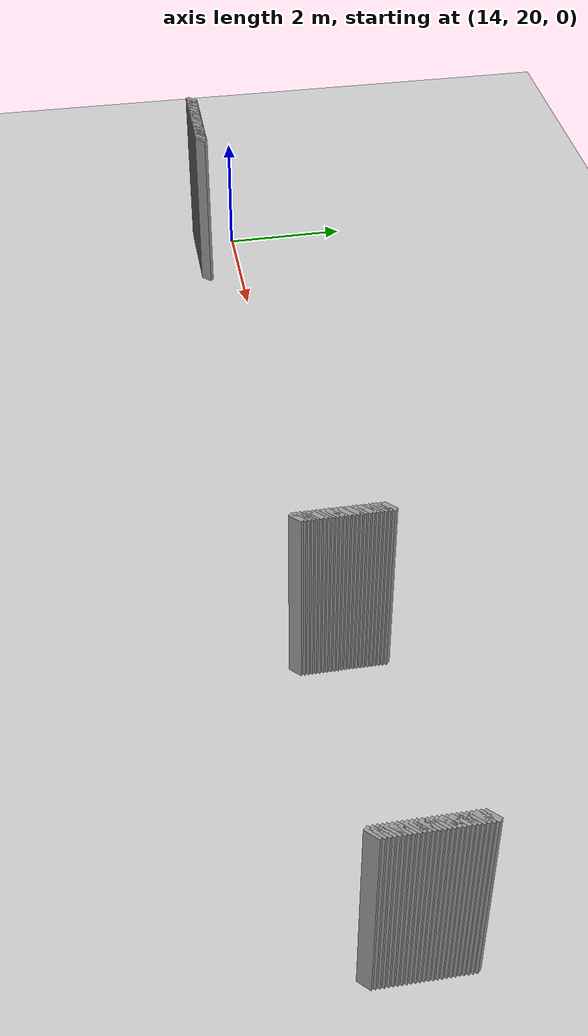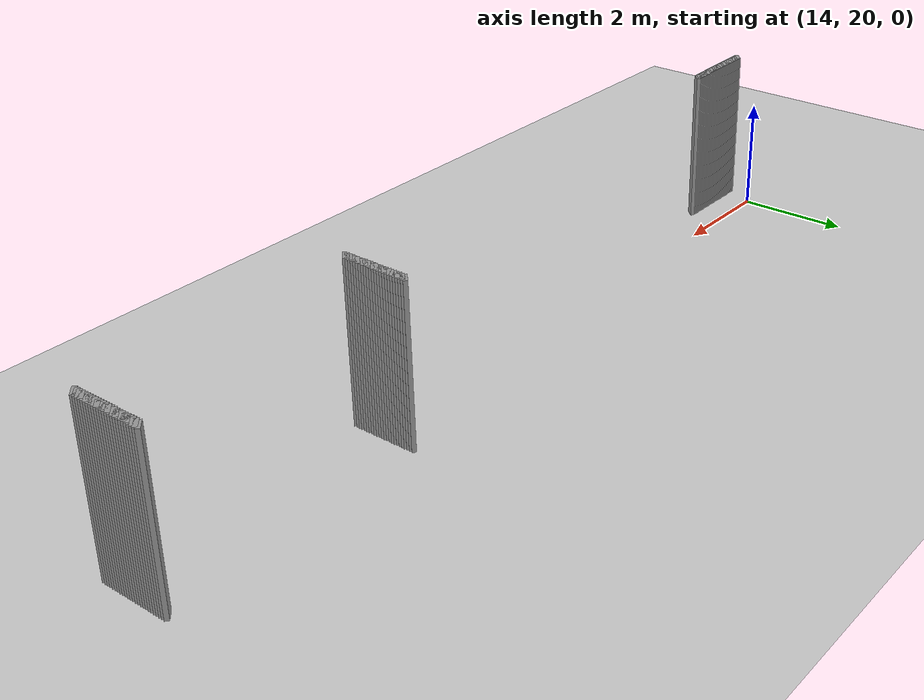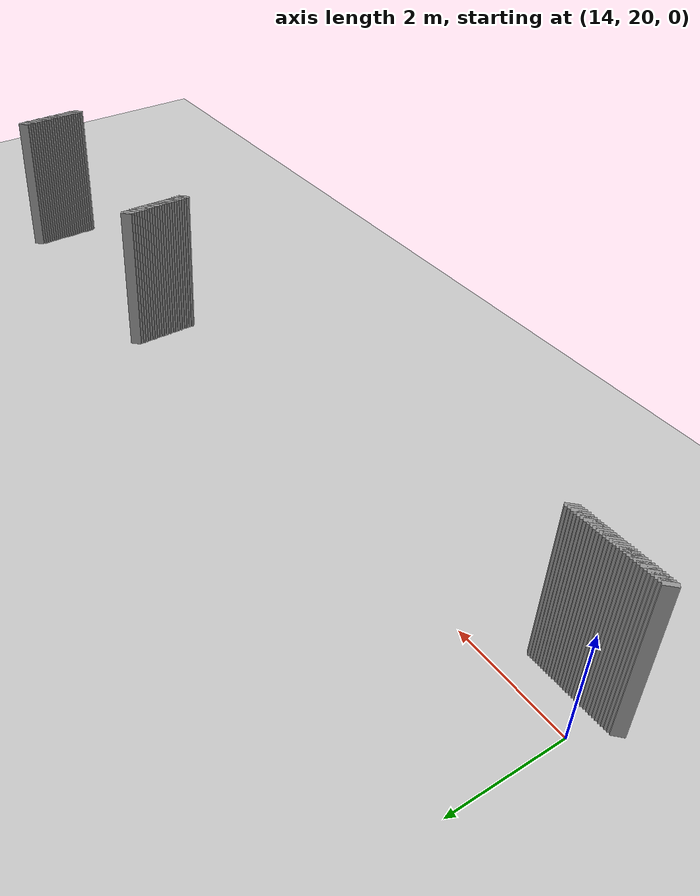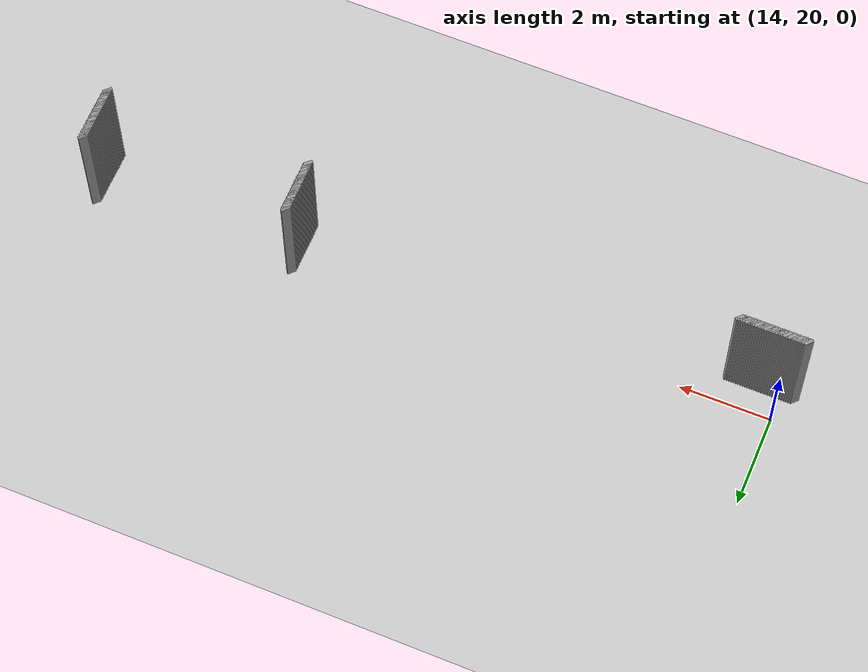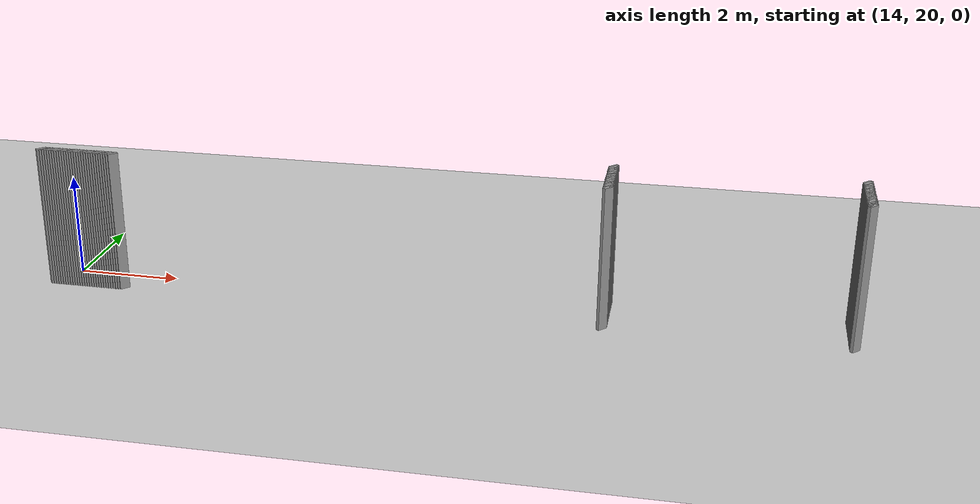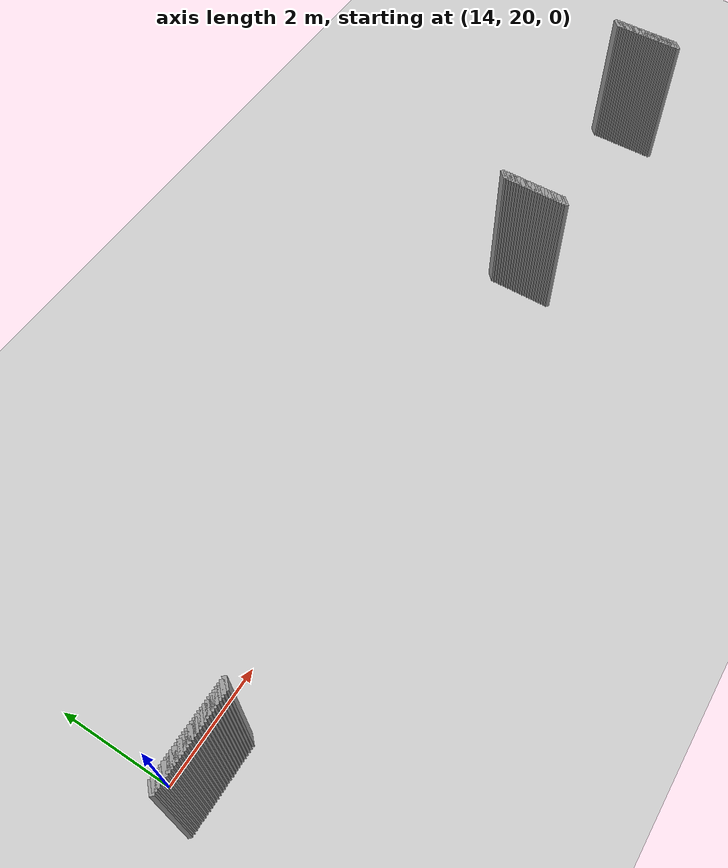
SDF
<sdf version="1.5">
 <world name="default">
  <include><uri>model://ground_plane</uri></include>
  <include><uri>model://sun</uri></include>
  <model name="grey_wall_238">
   <static>1</static>
   <link name="link">
    <pose>29.1 20.65  1.4 0 0 -0.785398163397</pose>
    <collision name="collision"><geometry><box><size>0.0707106781187 .2  2.8</size></box></geometry></collision>
    <visual name="visual">
     <cast_shadows>0</cast_shadows>
     <geometry><box><size>0.0707106781187 .2  2.8</size></box></geometry>
     <material>
      <script>
       <uri>model://grey_wall/materials/scripts</uri>
       <uri>model://grey_wall/materials/textures</uri>
       <name>vrc/grey_wall</name>
      </script>
     </material>
    </visual>
   </link>
  </model>
  <model name="grey_wall_239">
   <static>1</static>
   <link name="link">
    <pose>24.55 20.6  1.4 0 0 -0.785398163397</pose>
    <collision name="collision"><geometry><box><size>0.0707106781187 .2  2.8</size></box></geometry></collision>
    <visual name="visual">
     <cast_shadows>0</cast_shadows>
     <geometry><box><size>0.0707106781187 .2  2.8</size></box></geometry>
     <material>
      <script>
       <uri>model://grey_wall/materials/scripts</uri>
       <uri>model://grey_wall/materials/textures</uri>
       <name>vrc/grey_wall</name>
      </script>
     </material>
    </visual>
   </link>
  </model>
  <model name="grey_wall_240">
   <static>1</static>
   <link name="link">
    <pose>29.1 20.6  1.4 0 0 -0.785398163397</pose>
    <collision name="collision"><geometry><box><size>0.0707106781187 .2  2.8</size></box></geometry></collision>
    <visual name="visual">
     <cast_shadows>0</cast_shadows>
     <geometry><box><size>0.0707106781187 .2  2.8</size></box></geometry>
     <material>
      <script>
       <uri>model://grey_wall/materials/scripts</uri>
       <uri>model://grey_wall/materials/textures</uri>
       <name>vrc/grey_wall</name>
      </script>
     </material>
    </visual>
   </link>
  </model>
  <model name="grey_wall_241">
   <static>1</static>
   <link name="link">
    <pose>24.55 20.55  1.4 0 0 -0.785398163397</pose>
    <collision name="collision"><geometry><box><size>0.0707106781187 .2  2.8</size></box></geometry></collision>
    <visual name="visual">
     <cast_shadows>0</cast_shadows>
     <geometry><box><size>0.0707106781187 .2  2.8</size></box></geometry>
     <material>
      <script>
       <uri>model://grey_wall/materials/scripts</uri>
       <uri>model://grey_wall/materials/textures</uri>
       <name>vrc/grey_wall</name>
      </script>
     </material>
    </visual>
   </link>
  </model>
  <model name="grey_wall_242">
   <static>1</static>
   <link name="link">
    <pose>29.1 20.55  1.4 0 0 -0.785398163397</pose>
    <collision name="collision"><geometry><box><size>0.0707106781187 .2  2.8</size></box></geometry></collision>
    <visual name="visual">
     <cast_shadows>0</cast_shadows>
     <geometry><box><size>0.0707106781187 .2  2.8</size></box></geometry>
     <material>
      <script>
       <uri>model://grey_wall/materials/scripts</uri>
       <uri>model://grey_wall/materials/textures</uri>
       <name>vrc/grey_wall</name>
      </script>
     </material>
    </visual>
   </link>
  </model>
  <model name="grey_wall_243">
   <static>1</static>
   <link name="link">
    <pose>24.55 20.5  1.4 0 0 -0.785398163397</pose>
    <collision name="collision"><geometry><box><size>0.0707106781187 .2  2.8</size></box></geometry></collision>
    <visual name="visual">
     <cast_shadows>0</cast_shadows>
     <geometry><box><size>0.0707106781187 .2  2.8</size></box></geometry>
     <material>
      <script>
       <uri>model://grey_wall/materials/scripts</uri>
       <uri>model://grey_wall/materials/textures</uri>
       <name>vrc/grey_wall</name>
      </script>
     </material>
    </visual>
   </link>
  </model>
  <model name="grey_wall_244">
   <static>1</static>
   <link name="link">
    <pose>29.1 20.5  1.4 0 0 -0.785398163397</pose>
    <collision name="collision"><geometry><box><size>0.0707106781187 .2  2.8</size></box></geometry></collision>
    <visual name="visual">
     <cast_shadows>0</cast_shadows>
     <geometry><box><size>0.0707106781187 .2  2.8</size></box></geometry>
     <material>
      <script>
       <uri>model://grey_wall/materials/scripts</uri>
       <uri>model://grey_wall/materials/textures</uri>
       <name>vrc/grey_wall</name>
      </script>
     </material>
    </visual>
   </link>
  </model>
  <model name="grey_wall_245">
   <static>1</static>
   <link name="link">
    <pose>24.55 20.45  1.4 0 0 -0.785398163397</pose>
    <collision name="collision"><geometry><box><size>0.0707106781187 .2  2.8</size></box></geometry></collision>
    <visual name="visual">
     <cast_shadows>0</cast_shadows>
     <geometry><box><size>0.0707106781187 .2  2.8</size></box></geometry>
     <material>
      <script>
       <uri>model://grey_wall/materials/scripts</uri>
       <uri>model://grey_wall/materials/textures</uri>
       <name>vrc/grey_wall</name>
      </script>
     </material>
    </visual>
   </link>
  </model>
  <model name="grey_wall_246">
   <static>1</static>
   <link name="link">
    <pose>29.1 20.45  1.4 0 0 -0.785398163397</pose>
    <collision name="collision"><geometry><box><size>0.0707106781187 .2  2.8</size></box></geometry></collision>
    <visual name="visual">
     <cast_shadows>0</cast_shadows>
     <geometry><box><size>0.0707106781187 .2  2.8</size></box></geometry>
     <material>
      <script>
       <uri>model://grey_wall/materials/scripts</uri>
       <uri>model://grey_wall/materials/textures</uri>
       <name>vrc/grey_wall</name>
      </script>
     </material>
    </visual>
   </link>
  </model>
  <model name="grey_wall_247">
   <static>1</static>
   <link name="link">
    <pose>24.55 20.4  1.4 0 0 -0.785398163397</pose>
    <collision name="collision"><geometry><box><size>0.0707106781187 .2  2.8</size></box></geometry></collision>
    <visual name="visual">
     <cast_shadows>0</cast_shadows>
     <geometry><box><size>0.0707106781187 .2  2.8</size></box></geometry>
     <material>
      <script>
       <uri>model://grey_wall/materials/scripts</uri>
       <uri>model://grey_wall/materials/textures</uri>
       <name>vrc/grey_wall</name>
      </script>
     </material>
    </visual>
   </link>
  </model>
  <model name="grey_wall_248">
   <static>1</static>
   <link name="link">
    <pose>29.1 20.4  1.4 0 0 -0.785398163397</pose>
    <collision name="collision"><geometry><box><size>0.0707106781187 .2  2.8</size></box></geometry></collision>
    <visual name="visual">
     <cast_shadows>0</cast_shadows>
     <geometry><box><size>0.0707106781187 .2  2.8</size></box></geometry>
     <material>
      <script>
       <uri>model://grey_wall/materials/scripts</uri>
       <uri>model://grey_wall/materials/textures</uri>
       <name>vrc/grey_wall</name>
      </script>
     </material>
    </visual>
   </link>
  </model>
  <model name="grey_wall_249">
   <static>1</static>
   <link name="link">
    <pose>24.55 20.35  1.4 0 0 -0.785398163397</pose>
    <collision name="collision"><geometry><box><size>0.0707106781187 .2  2.8</size></box></geometry></collision>
    <visual name="visual">
     <cast_shadows>0</cast_shadows>
     <geometry><box><size>0.0707106781187 .2  2.8</size></box></geometry>
     <material>
      <script>
       <uri>model://grey_wall/materials/scripts</uri>
       <uri>model://grey_wall/materials/textures</uri>
       <name>vrc/grey_wall</name>
      </script>
     </material>
    </visual>
   </link>
  </model>
  <model name="grey_wall_250">
   <static>1</static>
   <link name="link">
    <pose>29.1 20.35  1.4 0 0 -0.785398163397</pose>
    <collision name="collision"><geometry><box><size>0.0707106781187 .2  2.8</size></box></geometry></collision>
    <visual name="visual">
     <cast_shadows>0</cast_shadows>
     <geometry><box><size>0.0707106781187 .2  2.8</size></box></geometry>
     <material>
      <script>
       <uri>model://grey_wall/materials/scripts</uri>
       <uri>model://grey_wall/materials/textures</uri>
       <name>vrc/grey_wall</name>
      </script>
     </material>
    </visual>
   </link>
  </model>
  <model name="grey_wall_251">
   <static>1</static>
   <link name="link">
    <pose>24.55 20.3  1.4 0 0 -0.785398163397</pose>
    <collision name="collision"><geometry><box><size>0.0707106781187 .2  2.8</size></box></geometry></collision>
    <visual name="visual">
     <cast_shadows>0</cast_shadows>
     <geometry><box><size>0.0707106781187 .2  2.8</size></box></geometry>
     <material>
      <script>
       <uri>model://grey_wall/materials/scripts</uri>
       <uri>model://grey_wall/materials/textures</uri>
       <name>vrc/grey_wall</name>
      </script>
     </material>
    </visual>
   </link>
  </model>
  <model name="grey_wall_252">
   <static>1</static>
   <link name="link">
    <pose>29.1 20.3  1.4 0 0 -0.785398163397</pose>
    <collision name="collision"><geometry><box><size>0.0707106781187 .2  2.8</size></box></geometry></collision>
    <visual name="visual">
     <cast_shadows>0</cast_shadows>
     <geometry><box><size>0.0707106781187 .2  2.8</size></box></geometry>
     <material>
      <script>
       <uri>model://grey_wall/materials/scripts</uri>
       <uri>model://grey_wall/materials/textures</uri>
       <name>vrc/grey_wall</name>
      </script>
     </material>
    </visual>
   </link>
  </model>
  <model name="grey_wall_253">
   <static>1</static>
   <link name="link">
    <pose>24.55 20.25  1.4 0 0 -0.785398163397</pose>
    <collision name="collision"><geometry><box><size>0.0707106781187 .2  2.8</size></box></geometry></collision>
    <visual name="visual">
     <cast_shadows>0</cast_shadows>
     <geometry><box><size>0.0707106781187 .2  2.8</size></box></geometry>
     <material>
      <script>
       <uri>model://grey_wall/materials/scripts</uri>
       <uri>model://grey_wall/materials/textures</uri>
       <name>vrc/grey_wall</name>
      </script>
     </material>
    </visual>
   </link>
  </model>
  <model name="grey_wall_254">
   <static>1</static>
   <link name="link">
    <pose>29.1 20.25  1.4 0 0 -0.785398163397</pose>
    <collision name="collision"><geometry><box><size>0.0707106781187 .2  2.8</size></box></geometry></collision>
    <visual name="visual">
     <cast_shadows>0</cast_shadows>
     <geometry><box><size>0.0707106781187 .2  2.8</size></box></geometry>
     <material>
      <script>
       <uri>model://grey_wall/materials/scripts</uri>
       <uri>model://grey_wall/materials/textures</uri>
       <name>vrc/grey_wall</name>
      </script>
     </material>
    </visual>
   </link>
  </model>
  <model name="grey_wall_255">
   <static>1</static>
   <link name="link">
    <pose>24.55 20.2  1.4 0 0 -0.785398163397</pose>
    <collision name="collision"><geometry><box><size>0.0707106781187 .2  2.8</size></box></geometry></collision>
    <visual name="visual">
     <cast_shadows>0</cast_shadows>
     <geometry><box><size>0.0707106781187 .2  2.8</size></box></geometry>
     <material>
      <script>
       <uri>model://grey_wall/materials/scripts</uri>
       <uri>model://grey_wall/materials/textures</uri>
       <name>vrc/grey_wall</name>
      </script>
     </material>
    </visual>
   </link>
  </model>
  <model name="grey_wall_256">
   <static>1</static>
   <link name="link">
    <pose>29.1 20.2  1.4 0 0 -0.785398163397</pose>
    <collision name="collision"><geometry><box><size>0.0707106781187 .2  2.8</size></box></geometry></collision>
    <visual name="visual">
     <cast_shadows>0</cast_shadows>
     <geometry><box><size>0.0707106781187 .2  2.8</size></box></geometry>
     <material>
      <script>
       <uri>model://grey_wall/materials/scripts</uri>
       <uri>model://grey_wall/materials/textures</uri>
       <name>vrc/grey_wall</name>
      </script>
     </material>
    </visual>
   </link>
  </model>
  <model name="grey_wall_257">
   <static>1</static>
   <link name="link">
    <pose>24.55 20.15  1.4 0 0 -0.785398163397</pose>
    <collision name="collision"><geometry><box><size>0.0707106781187 .2  2.8</size></box></geometry></collision>
    <visual name="visual">
     <cast_shadows>0</cast_shadows>
     <geometry><box><size>0.0707106781187 .2  2.8</size></box></geometry>
     <material>
      <script>
       <uri>model://grey_wall/materials/scripts</uri>
       <uri>model://grey_wall/materials/textures</uri>
       <name>vrc/grey_wall</name>
      </script>
     </material>
    </visual>
   </link>
  </model>
  <model name="grey_wall_258">
   <static>1</static>
   <link name="link">
    <pose>29.1 20.15  1.4 0 0 -0.785398163397</pose>
    <collision name="collision"><geometry><box><size>0.0707106781187 .2  2.8</size></box></geometry></collision>
    <visual name="visual">
     <cast_shadows>0</cast_shadows>
     <geometry><box><size>0.0707106781187 .2  2.8</size></box></geometry>
     <material>
      <script>
       <uri>model://grey_wall/materials/scripts</uri>
       <uri>model://grey_wall/materials/textures</uri>
       <name>vrc/grey_wall</name>
      </script>
     </material>
    </visual>
   </link>
  </model>
  <model name="grey_wall_259">
   <static>1</static>
   <link name="link">
    <pose>24.55 20.1  1.4 0 0 -0.785398163397</pose>
    <collision name="collision"><geometry><box><size>0.0707106781187 .2  2.8</size></box></geometry></collision>
    <visual name="visual">
     <cast_shadows>0</cast_shadows>
     <geometry><box><size>0.0707106781187 .2  2.8</size></box></geometry>
     <material>
      <script>
       <uri>model://grey_wall/materials/scripts</uri>
       <uri>model://grey_wall/materials/textures</uri>
       <name>vrc/grey_wall</name>
      </script>
     </material>
    </visual>
   </link>
  </model>
  <model name="grey_wall_260">
   <static>1</static>
   <link name="link">
    <pose>29.1 20.1  1.4 0 0 -0.785398163397</pose>
    <collision name="collision"><geometry><box><size>0.0707106781187 .2  2.8</size></box></geometry></collision>
    <visual name="visual">
     <cast_shadows>0</cast_shadows>
     <geometry><box><size>0.0707106781187 .2  2.8</size></box></geometry>
     <material>
      <script>
       <uri>model://grey_wall/materials/scripts</uri>
       <uri>model://grey_wall/materials/textures</uri>
       <name>vrc/grey_wall</name>
      </script>
     </material>
    </visual>
   </link>
  </model>
  <model name="grey_wall_261">
   <static>1</static>
   <link name="link">
    <pose>24.55 20.05  1.4 0 0 -0.785398163397</pose>
    <collision name="collision"><geometry><box><size>0.0707106781187 .2  2.8</size></box></geometry></collision>
    <visual name="visual">
     <cast_shadows>0</cast_shadows>
     <geometry><box><size>0.0707106781187 .2  2.8</size></box></geometry>
     <material>
      <script>
       <uri>model://grey_wall/materials/scripts</uri>
       <uri>model://grey_wall/materials/textures</uri>
       <name>vrc/grey_wall</name>
      </script>
     </material>
    </visual>
   </link>
  </model>
  <model name="grey_wall_262">
   <static>1</static>
   <link name="link">
    <pose>29.1 20.05  1.4 0 0 -0.785398163397</pose>
    <collision name="collision"><geometry><box><size>0.0707106781187 .2  2.8</size></box></geometry></collision>
    <visual name="visual">
     <cast_shadows>0</cast_shadows>
     <geometry><box><size>0.0707106781187 .2  2.8</size></box></geometry>
     <material>
      <script>
       <uri>model://grey_wall/materials/scripts</uri>
       <uri>model://grey_wall/materials/textures</uri>
       <name>vrc/grey_wall</name>
      </script>
     </material>
    </visual>
   </link>
  </model>
  <model name="grey_wall_263">
   <static>1</static>
   <link name="link">
    <pose>24.55 20.0  1.4 0 0 -0.785398163397</pose>
    <collision name="collision"><geometry><box><size>0.0707106781187 .2  2.8</size></box></geometry></collision>
    <visual name="visual">
     <cast_shadows>0</cast_shadows>
     <geometry><box><size>0.0707106781187 .2  2.8</size></box></geometry>
     <material>
      <script>
       <uri>model://grey_wall/materials/scripts</uri>
       <uri>model://grey_wall/materials/textures</uri>
       <name>vrc/grey_wall</name>
      </script>
     </material>
    </visual>
   </link>
  </model>
  <model name="grey_wall_264">
   <static>1</static>
   <link name="link">
    <pose>29.1 20.0  1.4 0 0 -0.785398163397</pose>
    <collision name="collision"><geometry><box><size>0.0707106781187 .2  2.8</size></box></geometry></collision>
    <visual name="visual">
     <cast_shadows>0</cast_shadows>
     <geometry><box><size>0.0707106781187 .2  2.8</size></box></geometry>
     <material>
      <script>
       <uri>model://grey_wall/materials/scripts</uri>
       <uri>model://grey_wall/materials/textures</uri>
       <name>vrc/grey_wall</name>
      </script>
     </material>
    </visual>
   </link>
  </model>
  <model name="grey_wall_265">
   <static>1</static>
   <link name="link">
    <pose>24.55 19.95  1.4 0 0 -0.785398163397</pose>
    <collision name="collision"><geometry><box><size>0.0707106781187 .2  2.8</size></box></geometry></collision>
    <visual name="visual">
     <cast_shadows>0</cast_shadows>
     <geometry><box><size>0.0707106781187 .2  2.8</size></box></geometry>
     <material>
      <script>
       <uri>model://grey_wall/materials/scripts</uri>
       <uri>model://grey_wall/materials/textures</uri>
       <name>vrc/grey_wall</name>
      </script>
     </material>
    </visual>
   </link>
  </model>
  <model name="grey_wall_266">
   <static>1</static>
   <link name="link">
    <pose>29.1 19.95  1.4 0 0 -0.785398163397</pose>
    <collision name="collision"><geometry><box><size>0.0707106781187 .2  2.8</size></box></geometry></collision>
    <visual name="visual">
     <cast_shadows>0</cast_shadows>
     <geometry><box><size>0.0707106781187 .2  2.8</size></box></geometry>
     <material>
      <script>
       <uri>model://grey_wall/materials/scripts</uri>
       <uri>model://grey_wall/materials/textures</uri>
       <name>vrc/grey_wall</name>
      </script>
     </material>
    </visual>
   </link>
  </model>
  <model name="grey_wall_267">
   <static>1</static>
   <link name="link">
    <pose>24.55 19.9  1.4 0 0 -0.785398163397</pose>
    <collision name="collision"><geometry><box><size>0.0707106781187 .2  2.8</size></box></geometry></collision>
    <visual name="visual">
     <cast_shadows>0</cast_shadows>
     <geometry><box><size>0.0707106781187 .2  2.8</size></box></geometry>
     <material>
      <script>
       <uri>model://grey_wall/materials/scripts</uri>
       <uri>model://grey_wall/materials/textures</uri>
       <name>vrc/grey_wall</name>
      </script>
     </material>
    </visual>
   </link>
  </model>
  <model name="grey_wall_268">
   <static>1</static>
   <link name="link">
    <pose>29.1 19.9  1.4 0 0 -0.785398163397</pose>
    <collision name="collision"><geometry><box><size>0.0707106781187 .2  2.8</size></box></geometry></collision>
    <visual name="visual">
     <cast_shadows>0</cast_shadows>
     <geometry><box><size>0.0707106781187 .2  2.8</size></box></geometry>
     <material>
      <script>
       <uri>model://grey_wall/materials/scripts</uri>
       <uri>model://grey_wall/materials/textures</uri>
       <name>vrc/grey_wall</name>
      </script>
     </material>
    </visual>
   </link>
  </model>
  <model name="grey_wall_269">
   <static>1</static>
   <link name="link">
    <pose>24.55 19.85  1.4 0 0 -0.785398163397</pose>
    <collision name="collision"><geometry><box><size>0.0707106781187 .2  2.8</size></box></geometry></collision>
    <visual name="visual">
     <cast_shadows>0</cast_shadows>
     <geometry><box><size>0.0707106781187 .2  2.8</size></box></geometry>
     <material>
      <script>
       <uri>model://grey_wall/materials/scripts</uri>
       <uri>model://grey_wall/materials/textures</uri>
       <name>vrc/grey_wall</name>
      </script>
     </material>
    </visual>
   </link>
  </model>
  <model name="grey_wall_270">
   <static>1</static>
   <link name="link">
    <pose>29.1 19.85  1.4 0 0 -0.785398163397</pose>
    <collision name="collision"><geometry><box><size>0.0707106781187 .2  2.8</size></box></geometry></collision>
    <visual name="visual">
     <cast_shadows>0</cast_shadows>
     <geometry><box><size>0.0707106781187 .2  2.8</size></box></geometry>
     <material>
      <script>
       <uri>model://grey_wall/materials/scripts</uri>
       <uri>model://grey_wall/materials/textures</uri>
       <name>vrc/grey_wall</name>
      </script>
     </material>
    </visual>
   </link>
  </model>
  <model name="grey_wall_271">
   <static>1</static>
   <link name="link">
    <pose>24.55 19.8  1.4 0 0 -0.785398163397</pose>
    <collision name="collision"><geometry><box><size>0.0707106781187 .2  2.8</size></box></geometry></collision>
    <visual name="visual">
     <cast_shadows>0</cast_shadows>
     <geometry><box><size>0.0707106781187 .2  2.8</size></box></geometry>
     <material>
      <script>
       <uri>model://grey_wall/materials/scripts</uri>
       <uri>model://grey_wall/materials/textures</uri>
       <name>vrc/grey_wall</name>
      </script>
     </material>
    </visual>
   </link>
  </model>
  <model name="grey_wall_272">
   <static>1</static>
   <link name="link">
    <pose>29.1 19.8  1.4 0 0 -0.785398163397</pose>
    <collision name="collision"><geometry><box><size>0.0707106781187 .2  2.8</size></box></geometry></collision>
    <visual name="visual">
     <cast_shadows>0</cast_shadows>
     <geometry><box><size>0.0707106781187 .2  2.8</size></box></geometry>
     <material>
      <script>
       <uri>model://grey_wall/materials/scripts</uri>
       <uri>model://grey_wall/materials/textures</uri>
       <name>vrc/grey_wall</name>
      </script>
     </material>
    </visual>
   </link>
  </model>
  <model name="grey_wall_273">
   <static>1</static>
   <link name="link">
    <pose>24.55 19.75  1.4 0 0 -0.785398163397</pose>
    <collision name="collision"><geometry><box><size>0.0707106781187 .2  2.8</size></box></geometry></collision>
    <visual name="visual">
     <cast_shadows>0</cast_shadows>
     <geometry><box><size>0.0707106781187 .2  2.8</size></box></geometry>
     <material>
      <script>
       <uri>model://grey_wall/materials/scripts</uri>
       <uri>model://grey_wall/materials/textures</uri>
       <name>vrc/grey_wall</name>
      </script>
     </material>
    </visual>
   </link>
  </model>
  <model name="grey_wall_274">
   <static>1</static>
   <link name="link">
    <pose>29.1 19.75  1.4 0 0 -0.785398163397</pose>
    <collision name="collision"><geometry><box><size>0.0707106781187 .2  2.8</size></box></geometry></collision>
    <visual name="visual">
     <cast_shadows>0</cast_shadows>
     <geometry><box><size>0.0707106781187 .2  2.8</size></box></geometry>
     <material>
      <script>
       <uri>model://grey_wall/materials/scripts</uri>
       <uri>model://grey_wall/materials/textures</uri>
       <name>vrc/grey_wall</name>
      </script>
     </material>
    </visual>
   </link>
  </model>
  <model name="grey_wall_275">
   <static>1</static>
   <link name="link">
    <pose>24.55 19.7  1.4 0 0 -0.785398163397</pose>
    <collision name="collision"><geometry><box><size>0.0707106781187 .2  2.8</size></box></geometry></collision>
    <visual name="visual">
     <cast_shadows>0</cast_shadows>
     <geometry><box><size>0.0707106781187 .2  2.8</size></box></geometry>
     <material>
      <script>
       <uri>model://grey_wall/materials/scripts</uri>
       <uri>model://grey_wall/materials/textures</uri>
       <name>vrc/grey_wall</name>
      </script>
     </material>
    </visual>
   </link>
  </model>
  <model name="grey_wall_276">
   <static>1</static>
   <link name="link">
    <pose>29.1 19.7  1.4 0 0 -0.785398163397</pose>
    <collision name="collision"><geometry><box><size>0.0707106781187 .2  2.8</size></box></geometry></collision>
    <visual name="visual">
     <cast_shadows>0</cast_shadows>
     <geometry><box><size>0.0707106781187 .2  2.8</size></box></geometry>
     <material>
      <script>
       <uri>model://grey_wall/materials/scripts</uri>
       <uri>model://grey_wall/materials/textures</uri>
       <name>vrc/grey_wall</name>
      </script>
     </material>
    </visual>
   </link>
  </model>
  <model name="grey_wall_277">
   <static>1</static>
   <link name="link">
    <pose>24.55 19.65  1.4 0 0 -0.785398163397</pose>
    <collision name="collision"><geometry><box><size>0.0707106781187 .2  2.8</size></box></geometry></collision>
    <visual name="visual">
     <cast_shadows>0</cast_shadows>
     <geometry><box><size>0.0707106781187 .2  2.8</size></box></geometry>
     <material>
      <script>
       <uri>model://grey_wall/materials/scripts</uri>
       <uri>model://grey_wall/materials/textures</uri>
       <name>vrc/grey_wall</name>
      </script>
     </material>
    </visual>
   </link>
  </model>
  <model name="grey_wall_278">
   <static>1</static>
   <link name="link">
    <pose>29.1 19.65  1.4 0 0 -0.785398163397</pose>
    <collision name="collision"><geometry><box><size>0.0707106781187 .2  2.8</size></box></geometry></collision>
    <visual name="visual">
     <cast_shadows>0</cast_shadows>
     <geometry><box><size>0.0707106781187 .2  2.8</size></box></geometry>
     <material>
      <script>
       <uri>model://grey_wall/materials/scripts</uri>
       <uri>model://grey_wall/materials/textures</uri>
       <name>vrc/grey_wall</name>
      </script>
     </material>
    </visual>
   </link>
  </model>
  <model name="grey_wall_279">
   <static>1</static>
   <link name="link">
    <pose>24.55 19.6  1.4 0 0 -0.785398163397</pose>
    <collision name="collision"><geometry><box><size>0.0707106781187 .2  2.8</size></box></geometry></collision>
    <visual name="visual">
     <cast_shadows>0</cast_shadows>
     <geometry><box><size>0.0707106781187 .2  2.8</size></box></geometry>
     <material>
      <script>
       <uri>model://grey_wall/materials/scripts</uri>
       <uri>model://grey_wall/materials/textures</uri>
       <name>vrc/grey_wall</name>
      </script>
     </material>
    </visual>
   </link>
  </model>
  <model name="grey_wall_280">
   <static>1</static>
   <link name="link">
    <pose>29.1 19.6  1.4 0 0 -0.785398163397</pose>
    <collision name="collision"><geometry><box><size>0.0707106781187 .2  2.8</size></box></geometry></collision>
    <visual name="visual">
     <cast_shadows>0</cast_shadows>
     <geometry><box><size>0.0707106781187 .2  2.8</size></box></geometry>
     <material>
      <script>
       <uri>model://grey_wall/materials/scripts</uri>
       <uri>model://grey_wall/materials/textures</uri>
       <name>vrc/grey_wall</name>
      </script>
     </material>
    </visual>
   </link>
  </model>
  <model name="grey_wall_281">
   <static>1</static>
   <link name="link">
    <pose>24.55 19.55  1.4 0 0 -0.785398163397</pose>
    <collision name="collision"><geometry><box><size>0.0707106781187 .2  2.8</size></box></geometry></collision>
    <visual name="visual">
     <cast_shadows>0</cast_shadows>
     <geometry><box><size>0.0707106781187 .2  2.8</size></box></geometry>
     <material>
      <script>
       <uri>model://grey_wall/materials/scripts</uri>
       <uri>model://grey_wall/materials/textures</uri>
       <name>vrc/grey_wall</name>
      </script>
     </material>
    </visual>
   </link>
  </model>
  <model name="grey_wall_282">
   <static>1</static>
   <link name="link">
    <pose>29.1 19.55  1.4 0 0 -0.785398163397</pose>
    <collision name="collision"><geometry><box><size>0.0707106781187 .2  2.8</size></box></geometry></collision>
    <visual name="visual">
     <cast_shadows>0</cast_shadows>
     <geometry><box><size>0.0707106781187 .2  2.8</size></box></geometry>
     <material>
      <script>
       <uri>model://grey_wall/materials/scripts</uri>
       <uri>model://grey_wall/materials/textures</uri>
       <name>vrc/grey_wall</name>
      </script>
     </material>
    </visual>
   </link>
  </model>
  <model name="grey_wall_283">
   <static>1</static>
   <link name="link">
    <pose>24.55 19.5  1.4 0 0 -0.785398163397</pose>
    <collision name="collision"><geometry><box><size>0.0707106781187 .2  2.8</size></box></geometry></collision>
    <visual name="visual">
     <cast_shadows>0</cast_shadows>
     <geometry><box><size>0.0707106781187 .2  2.8</size></box></geometry>
     <material>
      <script>
       <uri>model://grey_wall/materials/scripts</uri>
       <uri>model://grey_wall/materials/textures</uri>
       <name>vrc/grey_wall</name>
      </script>
     </material>
    </visual>
   </link>
  </model>
  <model name="grey_wall_284">
   <static>1</static>
   <link name="link">
    <pose>29.1 19.5  1.4 0 0 -0.785398163397</pose>
    <collision name="collision"><geometry><box><size>0.0707106781187 .2  2.8</size></box></geometry></collision>
    <visual name="visual">
     <cast_shadows>0</cast_shadows>
     <geometry><box><size>0.0707106781187 .2  2.8</size></box></geometry>
     <material>
      <script>
       <uri>model://grey_wall/materials/scripts</uri>
       <uri>model://grey_wall/materials/textures</uri>
       <name>vrc/grey_wall</name>
      </script>
     </material>
    </visual>
   </link>
  </model>
  <model name="grey_wall_285">
   <static>1</static>
   <link name="link">
    <pose>24.55 19.45  1.4 0 0 -0.785398163397</pose>
    <collision name="collision"><geometry><box><size>0.0707106781187 .2  2.8</size></box></geometry></collision>
    <visual name="visual">
     <cast_shadows>0</cast_shadows>
     <geometry><box><size>0.0707106781187 .2  2.8</size></box></geometry>
     <material>
      <script>
       <uri>model://grey_wall/materials/scripts</uri>
       <uri>model://grey_wall/materials/textures</uri>
       <name>vrc/grey_wall</name>
      </script>
     </material>
    </visual>
   </link>
  </model>
  <model name="grey_wall_286">
   <static>1</static>
   <link name="link">
    <pose>29.1 19.45  1.4 0 0 -0.785398163397</pose>
    <collision name="collision"><geometry><box><size>0.0707106781187 .2  2.8</size></box></geometry></collision>
    <visual name="visual">
     <cast_shadows>0</cast_shadows>
     <geometry><box><size>0.0707106781187 .2  2.8</size></box></geometry>
     <material>
      <script>
       <uri>model://grey_wall/materials/scripts</uri>
       <uri>model://grey_wall/materials/textures</uri>
       <name>vrc/grey_wall</name>
      </script>
     </material>
    </visual>
   </link>
  </model>
  <model name="grey_wall_287">
   <static>1</static>
   <link name="link">
    <pose>13.7 19.4  1.4 0 0 -0.785398163397</pose>
    <collision name="collision"><geometry><box><size>0.0707106781187 .2  2.8</size></box></geometry></collision>
    <visual name="visual">
     <cast_shadows>0</cast_shadows>
     <geometry><box><size>0.0707106781187 .2  2.8</size></box></geometry>
     <material>
      <script>
       <uri>model://grey_wall/materials/scripts</uri>
       <uri>model://grey_wall/materials/textures</uri>
       <name>vrc/grey_wall</name>
      </script>
     </material>
    </visual>
   </link>
  </model>
  <model name="grey_wall_288">
   <static>1</static>
   <link name="link">
    <pose>13.75 19.4  1.4 0 0 -0.785398163397</pose>
    <collision name="collision"><geometry><box><size>0.0707106781187 .2  2.8</size></box></geometry></collision>
    <visual name="visual">
     <cast_shadows>0</cast_shadows>
     <geometry><box><size>0.0707106781187 .2  2.8</size></box></geometry>
     <material>
      <script>
       <uri>model://grey_wall/materials/scripts</uri>
       <uri>model://grey_wall/materials/textures</uri>
       <name>vrc/grey_wall</name>
      </script>
     </material>
    </visual>
   </link>
  </model>
  <model name="grey_wall_289">
   <static>1</static>
   <link name="link">
    <pose>13.8 19.4  1.4 0 0 -0.785398163397</pose>
    <collision name="collision"><geometry><box><size>0.0707106781187 .2  2.8</size></box></geometry></collision>
    <visual name="visual">
     <cast_shadows>0</cast_shadows>
     <geometry><box><size>0.0707106781187 .2  2.8</size></box></geometry>
     <material>
      <script>
       <uri>model://grey_wall/materials/scripts</uri>
       <uri>model://grey_wall/materials/textures</uri>
       <name>vrc/grey_wall</name>
      </script>
     </material>
    </visual>
   </link>
  </model>
  <model name="grey_wall_290">
   <static>1</static>
   <link name="link">
    <pose>13.85 19.4  1.4 0 0 -0.785398163397</pose>
    <collision name="collision"><geometry><box><size>0.0707106781187 .2  2.8</size></box></geometry></collision>
    <visual name="visual">
     <cast_shadows>0</cast_shadows>
     <geometry><box><size>0.0707106781187 .2  2.8</size></box></geometry>
     <material>
      <script>
       <uri>model://grey_wall/materials/scripts</uri>
       <uri>model://grey_wall/materials/textures</uri>
       <name>vrc/grey_wall</name>
      </script>
     </material>
    </visual>
   </link>
  </model>
  <model name="grey_wall_291">
   <static>1</static>
   <link name="link">
    <pose>13.9 19.4  1.4 0 0 -0.785398163397</pose>
    <collision name="collision"><geometry><box><size>0.0707106781187 .2  2.8</size></box></geometry></collision>
    <visual name="visual">
     <cast_shadows>0</cast_shadows>
     <geometry><box><size>0.0707106781187 .2  2.8</size></box></geometry>
     <material>
      <script>
       <uri>model://grey_wall/materials/scripts</uri>
       <uri>model://grey_wall/materials/textures</uri>
       <name>vrc/grey_wall</name>
      </script>
     </material>
    </visual>
   </link>
  </model>
  <model name="grey_wall_292">
   <static>1</static>
   <link name="link">
    <pose>13.95 19.4  1.4 0 0 -0.785398163397</pose>
    <collision name="collision"><geometry><box><size>0.0707106781187 .2  2.8</size></box></geometry></collision>
    <visual name="visual">
     <cast_shadows>0</cast_shadows>
     <geometry><box><size>0.0707106781187 .2  2.8</size></box></geometry>
     <material>
      <script>
       <uri>model://grey_wall/materials/scripts</uri>
       <uri>model://grey_wall/materials/textures</uri>
       <name>vrc/grey_wall</name>
      </script>
     </material>
    </visual>
   </link>
  </model>
  <model name="grey_wall_293">
   <static>1</static>
   <link name="link">
    <pose>14.0 19.4  1.4 0 0 -0.785398163397</pose>
    <collision name="collision"><geometry><box><size>0.0707106781187 .2  2.8</size></box></geometry></collision>
    <visual name="visual">
     <cast_shadows>0</cast_shadows>
     <geometry><box><size>0.0707106781187 .2  2.8</size></box></geometry>
     <material>
      <script>
       <uri>model://grey_wall/materials/scripts</uri>
       <uri>model://grey_wall/materials/textures</uri>
       <name>vrc/grey_wall</name>
      </script>
     </material>
    </visual>
   </link>
  </model>
  <model name="grey_wall_294">
   <static>1</static>
   <link name="link">
    <pose>14.05 19.4  1.4 0 0 -0.785398163397</pose>
    <collision name="collision"><geometry><box><size>0.0707106781187 .2  2.8</size></box></geometry></collision>
    <visual name="visual">
     <cast_shadows>0</cast_shadows>
     <geometry><box><size>0.0707106781187 .2  2.8</size></box></geometry>
     <material>
      <script>
       <uri>model://grey_wall/materials/scripts</uri>
       <uri>model://grey_wall/materials/textures</uri>
       <name>vrc/grey_wall</name>
      </script>
     </material>
    </visual>
   </link>
  </model>
  <model name="grey_wall_295">
   <static>1</static>
   <link name="link">
    <pose>14.1 19.4  1.4 0 0 -0.785398163397</pose>
    <collision name="collision"><geometry><box><size>0.0707106781187 .2  2.8</size></box></geometry></collision>
    <visual name="visual">
     <cast_shadows>0</cast_shadows>
     <geometry><box><size>0.0707106781187 .2  2.8</size></box></geometry>
     <material>
      <script>
       <uri>model://grey_wall/materials/scripts</uri>
       <uri>model://grey_wall/materials/textures</uri>
       <name>vrc/grey_wall</name>
      </script>
     </material>
    </visual>
   </link>
  </model>
  <model name="grey_wall_296">
   <static>1</static>
   <link name="link">
    <pose>14.15 19.4  1.4 0 0 -0.785398163397</pose>
    <collision name="collision"><geometry><box><size>0.0707106781187 .2  2.8</size></box></geometry></collision>
    <visual name="visual">
     <cast_shadows>0</cast_shadows>
     <geometry><box><size>0.0707106781187 .2  2.8</size></box></geometry>
     <material>
      <script>
       <uri>model://grey_wall/materials/scripts</uri>
       <uri>model://grey_wall/materials/textures</uri>
       <name>vrc/grey_wall</name>
      </script>
     </material>
    </visual>
   </link>
  </model>
  <model name="grey_wall_297">
   <static>1</static>
   <link name="link">
    <pose>14.2 19.4  1.4 0 0 -0.785398163397</pose>
    <collision name="collision"><geometry><box><size>0.0707106781187 .2  2.8</size></box></geometry></collision>
    <visual name="visual">
     <cast_shadows>0</cast_shadows>
     <geometry><box><size>0.0707106781187 .2  2.8</size></box></geometry>
     <material>
      <script>
       <uri>model://grey_wall/materials/scripts</uri>
       <uri>model://grey_wall/materials/textures</uri>
       <name>vrc/grey_wall</name>
      </script>
     </material>
    </visual>
   </link>
  </model>
  <model name="grey_wall_298">
   <static>1</static>
   <link name="link">
    <pose>14.25 19.4  1.4 0 0 -0.785398163397</pose>
    <collision name="collision"><geometry><box><size>0.0707106781187 .2  2.8</size></box></geometry></collision>
    <visual name="visual">
     <cast_shadows>0</cast_shadows>
     <geometry><box><size>0.0707106781187 .2  2.8</size></box></geometry>
     <material>
      <script>
       <uri>model://grey_wall/materials/scripts</uri>
       <uri>model://grey_wall/materials/textures</uri>
       <name>vrc/grey_wall</name>
      </script>
     </material>
    </visual>
   </link>
  </model>
  <model name="grey_wall_299">
   <static>1</static>
   <link name="link">
    <pose>14.3 19.4  1.4 0 0 -0.785398163397</pose>
    <collision name="collision"><geometry><box><size>0.0707106781187 .2  2.8</size></box></geometry></collision>
    <visual name="visual">
     <cast_shadows>0</cast_shadows>
     <geometry><box><size>0.0707106781187 .2  2.8</size></box></geometry>
     <material>
      <script>
       <uri>model://grey_wall/materials/scripts</uri>
       <uri>model://grey_wall/materials/textures</uri>
       <name>vrc/grey_wall</name>
      </script>
     </material>
    </visual>
   </link>
  </model>
  <model name="grey_wall_300">
   <static>1</static>
   <link name="link">
    <pose>14.35 19.4  1.4 0 0 -0.785398163397</pose>
    <collision name="collision"><geometry><box><size>0.0707106781187 .2  2.8</size></box></geometry></collision>
    <visual name="visual">
     <cast_shadows>0</cast_shadows>
     <geometry><box><size>0.0707106781187 .2  2.8</size></box></geometry>
     <material>
      <script>
       <uri>model://grey_wall/materials/scripts</uri>
       <uri>model://grey_wall/materials/textures</uri>
       <name>vrc/grey_wall</name>
      </script>
     </material>
    </visual>
   </link>
  </model>
  <model name="grey_wall_301">
   <static>1</static>
   <link name="link">
    <pose>14.4 19.4  1.4 0 0 -0.785398163397</pose>
    <collision name="collision"><geometry><box><size>0.0707106781187 .2  2.8</size></box></geometry></collision>
    <visual name="visual">
     <cast_shadows>0</cast_shadows>
     <geometry><box><size>0.0707106781187 .2  2.8</size></box></geometry>
     <material>
      <script>
       <uri>model://grey_wall/materials/scripts</uri>
       <uri>model://grey_wall/materials/textures</uri>
       <name>vrc/grey_wall</name>
      </script>
     </material>
    </visual>
   </link>
  </model>
  <model name="grey_wall_302">
   <static>1</static>
   <link name="link">
    <pose>14.45 19.4  1.4 0 0 -0.785398163397</pose>
    <collision name="collision"><geometry><box><size>0.0707106781187 .2  2.8</size></box></geometry></collision>
    <visual name="visual">
     <cast_shadows>0</cast_shadows>
     <geometry><box><size>0.0707106781187 .2  2.8</size></box></geometry>
     <material>
      <script>
       <uri>model://grey_wall/materials/scripts</uri>
       <uri>model://grey_wall/materials/textures</uri>
       <name>vrc/grey_wall</name>
      </script>
     </material>
    </visual>
   </link>
  </model>
  <model name="grey_wall_303">
   <static>1</static>
   <link name="link">
    <pose>14.5 19.4  1.4 0 0 -0.785398163397</pose>
    <collision name="collision"><geometry><box><size>0.0707106781187 .2  2.8</size></box></geometry></collision>
    <visual name="visual">
     <cast_shadows>0</cast_shadows>
     <geometry><box><size>0.0707106781187 .2  2.8</size></box></geometry>
     <material>
      <script>
       <uri>model://grey_wall/materials/scripts</uri>
       <uri>model://grey_wall/materials/textures</uri>
       <name>vrc/grey_wall</name>
      </script>
     </material>
    </visual>
   </link>
  </model>
  <model name="grey_wall_304">
   <static>1</static>
   <link name="link">
    <pose>14.55 19.4  1.4 0 0 -0.785398163397</pose>
    <collision name="collision"><geometry><box><size>0.0707106781187 .2  2.8</size></box></geometry></collision>
    <visual name="visual">
     <cast_shadows>0</cast_shadows>
     <geometry><box><size>0.0707106781187 .2  2.8</size></box></geometry>
     <material>
      <script>
       <uri>model://grey_wall/materials/scripts</uri>
       <uri>model://grey_wall/materials/textures</uri>
       <name>vrc/grey_wall</name>
      </script>
     </material>
    </visual>
   </link>
  </model>
  <model name="grey_wall_305">
   <static>1</static>
   <link name="link">
    <pose>14.6 19.4  1.4 0 0 -0.785398163397</pose>
    <collision name="collision"><geometry><box><size>0.0707106781187 .2  2.8</size></box></geometry></collision>
    <visual name="visual">
     <cast_shadows>0</cast_shadows>
     <geometry><box><size>0.0707106781187 .2  2.8</size></box></geometry>
     <material>
      <script>
       <uri>model://grey_wall/materials/scripts</uri>
       <uri>model://grey_wall/materials/textures</uri>
       <name>vrc/grey_wall</name>
      </script>
     </material>
    </visual>
   </link>
  </model>
  <model name="grey_wall_306">
   <static>1</static>
   <link name="link">
    <pose>14.65 19.4  1.4 0 0 -0.785398163397</pose>
    <collision name="collision"><geometry><box><size>0.0707106781187 .2  2.8</size></box></geometry></collision>
    <visual name="visual">
     <cast_shadows>0</cast_shadows>
     <geometry><box><size>0.0707106781187 .2  2.8</size></box></geometry>
     <material>
      <script>
       <uri>model://grey_wall/materials/scripts</uri>
       <uri>model://grey_wall/materials/textures</uri>
       <name>vrc/grey_wall</name>
      </script>
     </material>
    </visual>
   </link>
  </model>
  <model name="grey_wall_307">
   <static>1</static>
   <link name="link">
    <pose>14.7 19.4  1.4 0 0 -0.785398163397</pose>
    <collision name="collision"><geometry><box><size>0.0707106781187 .2  2.8</size></box></geometry></collision>
    <visual name="visual">
     <cast_shadows>0</cast_shadows>
     <geometry><box><size>0.0707106781187 .2  2.8</size></box></geometry>
     <material>
      <script>
       <uri>model://grey_wall/materials/scripts</uri>
       <uri>model://grey_wall/materials/textures</uri>
       <name>vrc/grey_wall</name>
      </script>
     </material>
    </visual>
   </link>
  </model>
  <model name="grey_wall_308">
   <static>1</static>
   <link name="link">
    <pose>14.75 19.4  1.4 0 0 -0.785398163397</pose>
    <collision name="collision"><geometry><box><size>0.0707106781187 .2  2.8</size></box></geometry></collision>
    <visual name="visual">
     <cast_shadows>0</cast_shadows>
     <geometry><box><size>0.0707106781187 .2  2.8</size></box></geometry>
     <material>
      <script>
       <uri>model://grey_wall/materials/scripts</uri>
       <uri>model://grey_wall/materials/textures</uri>
       <name>vrc/grey_wall</name>
      </script>
     </material>
    </visual>
   </link>
  </model>
  <model name="grey_wall_309">
   <static>1</static>
   <link name="link">
    <pose>14.8 19.4  1.4 0 0 -0.785398163397</pose>
    <collision name="collision"><geometry><box><size>0.0707106781187 .2  2.8</size></box></geometry></collision>
    <visual name="visual">
     <cast_shadows>0</cast_shadows>
     <geometry><box><size>0.0707106781187 .2  2.8</size></box></geometry>
     <material>
      <script>
       <uri>model://grey_wall/materials/scripts</uri>
       <uri>model://grey_wall/materials/textures</uri>
       <name>vrc/grey_wall</name>
      </script>
     </material>
    </visual>
   </link>
  </model>
  <model name="grey_wall_310">
   <static>1</static>
   <link name="link">
    <pose>14.85 19.4  1.4 0 0 -0.785398163397</pose>
    <collision name="collision"><geometry><box><size>0.0707106781187 .2  2.8</size></box></geometry></collision>
    <visual name="visual">
     <cast_shadows>0</cast_shadows>
     <geometry><box><size>0.0707106781187 .2  2.8</size></box></geometry>
     <material>
      <script>
       <uri>model://grey_wall/materials/scripts</uri>
       <uri>model://grey_wall/materials/textures</uri>
       <name>vrc/grey_wall</name>
      </script>
     </material>
    </visual>
   </link>
  </model>
  <model name="grey_wall_311">
   <static>1</static>
   <link name="link">
    <pose>14.9 19.4  1.4 0 0 -0.785398163397</pose>
    <collision name="collision"><geometry><box><size>0.0707106781187 .2  2.8</size></box></geometry></collision>
    <visual name="visual">
     <cast_shadows>0</cast_shadows>
     <geometry><box><size>0.0707106781187 .2  2.8</size></box></geometry>
     <material>
      <script>
       <uri>model://grey_wall/materials/scripts</uri>
       <uri>model://grey_wall/materials/textures</uri>
       <name>vrc/grey_wall</name>
      </script>
     </material>
    </visual>
   </link>
  </model>
  <model name="grey_wall_312">
   <static>1</static>
   <link name="link">
    <pose>14.95 19.4  1.4 0 0 -0.785398163397</pose>
    <collision name="collision"><geometry><box><size>0.0707106781187 .2  2.8</size></box></geometry></collision>
    <visual name="visual">
     <cast_shadows>0</cast_shadows>
     <geometry><box><size>0.0707106781187 .2  2.8</size></box></geometry>
     <material>
      <script>
       <uri>model://grey_wall/materials/scripts</uri>
       <uri>model://grey_wall/materials/textures</uri>
       <name>vrc/grey_wall</name>
      </script>
     </material>
    </visual>
   </link>
  </model>
  <model name="grey_wall_313">
   <static>1</static>
   <link name="link">
    <pose>15.0 19.4  1.4 0 0 -0.785398163397</pose>
    <collision name="collision"><geometry><box><size>0.0707106781187 .2  2.8</size></box></geometry></collision>
    <visual name="visual">
     <cast_shadows>0</cast_shadows>
     <geometry><box><size>0.0707106781187 .2  2.8</size></box></geometry>
     <material>
      <script>
       <uri>model://grey_wall/materials/scripts</uri>
       <uri>model://grey_wall/materials/textures</uri>
       <name>vrc/grey_wall</name>
      </script>
     </material>
    </visual>
   </link>
  </model>
  <model name="grey_wall_314">
   <static>1</static>
   <link name="link">
    <pose>15.05 19.4  1.4 0 0 -0.785398163397</pose>
    <collision name="collision"><geometry><box><size>0.0707106781187 .2  2.8</size></box></geometry></collision>
    <visual name="visual">
     <cast_shadows>0</cast_shadows>
     <geometry><box><size>0.0707106781187 .2  2.8</size></box></geometry>
     <material>
      <script>
       <uri>model://grey_wall/materials/scripts</uri>
       <uri>model://grey_wall/materials/textures</uri>
       <name>vrc/grey_wall</name>
      </script>
     </material>
    </visual>
   </link>
  </model>
  <model name="grey_wall_315">
   <static>1</static>
   <link name="link">
    <pose>15.1 19.4  1.4 0 0 -0.785398163397</pose>
    <collision name="collision"><geometry><box><size>0.0707106781187 .2  2.8</size></box></geometry></collision>
    <visual name="visual">
     <cast_shadows>0</cast_shadows>
     <geometry><box><size>0.0707106781187 .2  2.8</size></box></geometry>
     <material>
      <script>
       <uri>model://grey_wall/materials/scripts</uri>
       <uri>model://grey_wall/materials/textures</uri>
       <name>vrc/grey_wall</name>
      </script>
     </material>
    </visual>
   </link>
  </model>
  <model name="grey_wall_316">
   <static>1</static>
   <link name="link">
    <pose>15.15 19.4  1.4 0 0 -0.785398163397</pose>
    <collision name="collision"><geometry><box><size>0.0707106781187 .2  2.8</size></box></geometry></collision>
    <visual name="visual">
     <cast_shadows>0</cast_shadows>
     <geometry><box><size>0.0707106781187 .2  2.8</size></box></geometry>
     <material>
      <script>
       <uri>model://grey_wall/materials/scripts</uri>
       <uri>model://grey_wall/materials/textures</uri>
       <name>vrc/grey_wall</name>
      </script>
     </material>
    </visual>
   </link>
  </model>
 </world>
</sdf>
